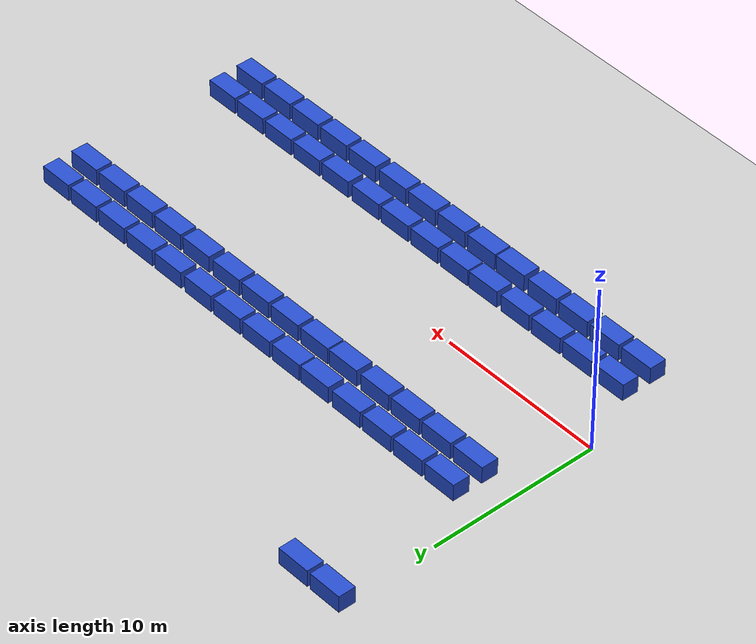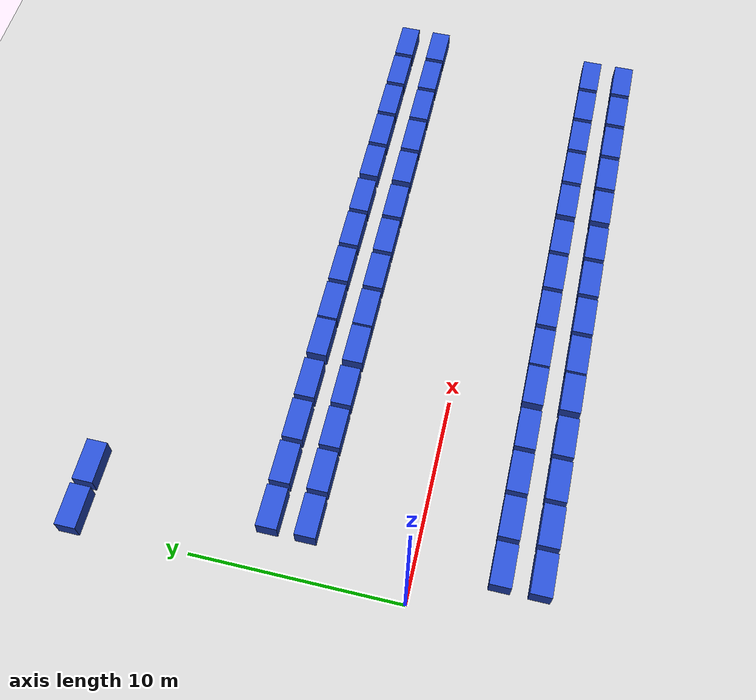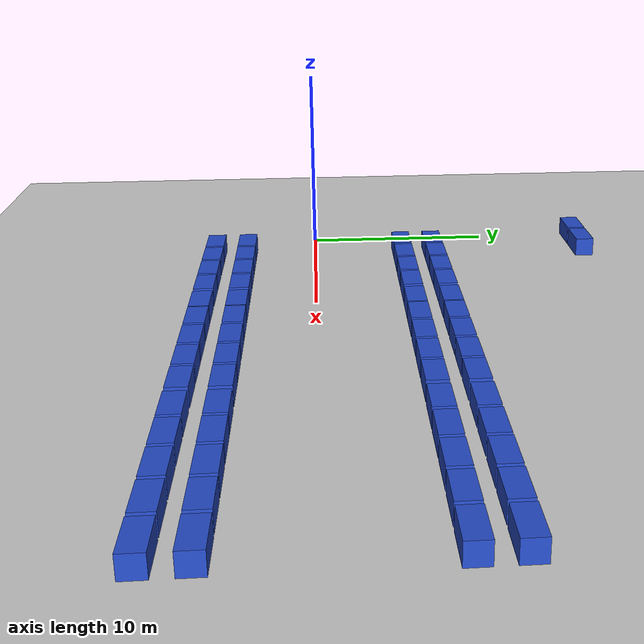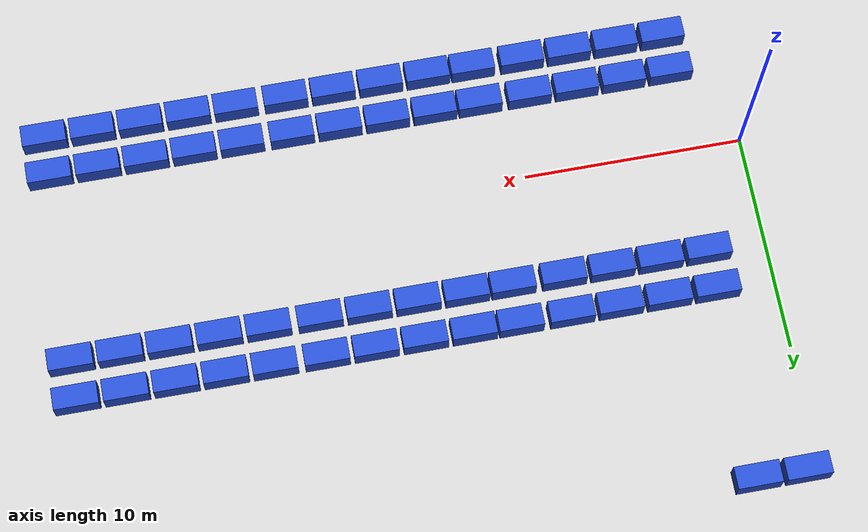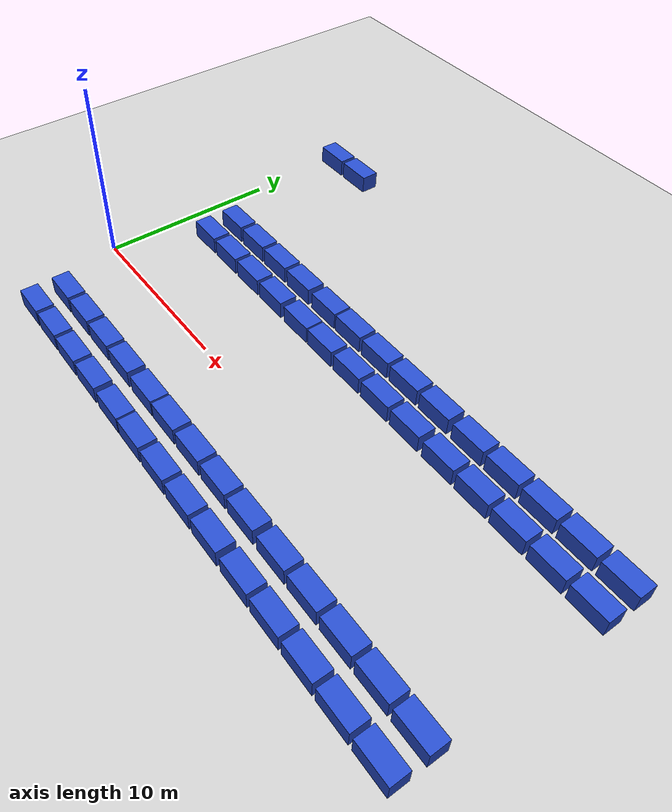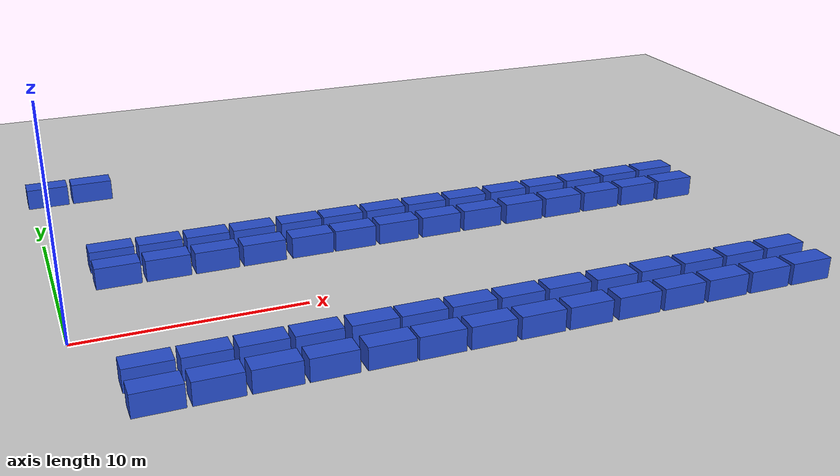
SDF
<sdf version="1.6">
 <world name="default">
  <model name="ground_plane">
   <static>1</static>
   <link name="link">
    <collision name="collision">
     <geometry><plane><normal>0 0 1</normal><size>100 100</size></plane></geometry>
     <surface><friction><ode><mu>100</mu><mu2>50</mu2></ode></friction></surface>
    </collision>
    <visual name="visual">
     <cast_shadows>0</cast_shadows>
     <geometry><plane><normal>0 0 1</normal><size>100 100</size></plane></geometry>
     <material>
      <script><uri>file://media/materials/scripts/gazebo.material</uri><name>Gazebo/Grey</name></script>
     </material>
    </visual>
   </link>
  </model>
  <model name="box101">
   <link name="blue_box">
    <inertial>
     <pose>2 0 0 0 -0 0</pose>
     <mass>1</mass>
     <inertia><ixx>0.17</ixx><ixy>0</ixy><ixz>0</ixz><iyy>0.42</iyy><iyz>0</iyz><izz>0.42</izz></inertia>
    </inertial>
    <collision name="blue_box_collision">
     <pose>2 0 1 0 -0 0</pose>
     <geometry><box><size>2 1 1</size></box></geometry>
    </collision>
    <visual name="blue_box_visual">
     <pose>2 0 1 0 -0 0</pose>
     <geometry><box><size>2 1 1</size></box></geometry>
     <material>
      <script><name>Gazebo/Blue</name><uri>file://media/materials/scripts/gazebo.material</uri></script>
     </material>
    </visual>
    <gravity>0</gravity>
   </link>
   <pose>-1.3 15.5996 -0.500378 -0.000755 0 0</pose>
  </model>
  <model name="box102">
   <link name="blue_box">
    <inertial>
     <pose>2 0 0 0 -0 0</pose>
     <mass>1</mass>
     <inertia><ixx>0.17</ixx><ixy>0</ixy><ixz>0</ixz><iyy>0.42</iyy><iyz>0</iyz><izz>0.42</izz></inertia>
    </inertial>
    <collision name="blue_box_collision">
     <pose>2 0 1 0 -0 0</pose>
     <geometry><box><size>2 1 1</size></box></geometry>
    </collision>
    <visual name="blue_box_visual">
     <pose>2 0 1 0 -0 0</pose>
     <geometry><box><size>2 1 1</size></box></geometry>
     <material>
      <script><name>Gazebo/Blue</name><uri>file://media/materials/scripts/gazebo.material</uri></script>
     </material>
    </visual>
    <gravity>0</gravity>
   </link>
   <pose>0.900004 15.5996 -0.500378 -0.000755 0 0</pose>
  </model>
  <model name="box131">
   <link name="blue_box">
    <inertial>
     <pose>2 0 0 0 -0 0</pose>
     <mass>1</mass>
     <inertia><ixx>0.17</ixx><ixy>0</ixy><ixz>0</ixz><iyy>0.42</iyy><iyz>0</iyz><izz>0.42</izz></inertia>
    </inertial>
    <collision name="blue_box_collision">
     <pose>2 0 1 0 -0 0</pose>
     <geometry><box><size>2 1 1</size></box></geometry>
    </collision>
    <visual name="blue_box_visual">
     <pose>2 0 1 0 -0 0</pose>
     <geometry><box><size>2 1 1</size></box></geometry>
     <material>
      <script><name>Gazebo/Blue</name><uri>file://media/materials/scripts/gazebo.material</uri></script>
     </material>
    </visual>
    <gravity>0</gravity>
   </link>
   <pose>0.700003 6.79962 -0.500378 -0.000755 0 0</pose>
  </model>
  <model name="box132">
   <link name="blue_box">
    <inertial>
     <pose>2 0 0 0 -0 0</pose>
     <mass>1</mass>
     <inertia><ixx>0.17</ixx><ixy>0</ixy><ixz>0</ixz><iyy>0.42</iyy><iyz>0</iyz><izz>0.42</izz></inertia>
    </inertial>
    <collision name="blue_box_collision">
     <pose>2 0 1 0 -0 0</pose>
     <geometry><box><size>2 1 1</size></box></geometry>
    </collision>
    <visual name="blue_box_visual">
     <pose>2 0 1 0 -0 0</pose>
     <geometry><box><size>2 1 1</size></box></geometry>
     <material>
      <script><name>Gazebo/Blue</name><uri>file://media/materials/scripts/gazebo.material</uri></script>
     </material>
    </visual>
    <gravity>0</gravity>
   </link>
   <pose>2.9 6.79962 -0.500378 -0.000755 0 0</pose>
  </model>
  <model name="box133">
   <link name="blue_box">
    <inertial>
     <pose>2 0 0 0 -0 0</pose>
     <mass>1</mass>
     <inertia><ixx>0.17</ixx><ixy>0</ixy><ixz>0</ixz><iyy>0.42</iyy><iyz>0</iyz><izz>0.42</izz></inertia>
    </inertial>
    <collision name="blue_box_collision">
     <pose>2 0 1 0 -0 0</pose>
     <geometry><box><size>2 1 1</size></box></geometry>
    </collision>
    <visual name="blue_box_visual">
     <pose>2 0 1 0 -0 0</pose>
     <geometry><box><size>2 1 1</size></box></geometry>
     <material>
      <script><name>Gazebo/Blue</name><uri>file://media/materials/scripts/gazebo.material</uri></script>
     </material>
    </visual>
    <gravity>0</gravity>
   </link>
   <pose>5.1 6.79962 -0.500378 -0.000755 0 0</pose>
  </model>
  <model name="box134">
   <link name="blue_box">
    <inertial>
     <pose>2 0 0 0 -0 0</pose>
     <mass>1</mass>
     <inertia><ixx>0.17</ixx><ixy>0</ixy><ixz>0</ixz><iyy>0.42</iyy><iyz>0</iyz><izz>0.42</izz></inertia>
    </inertial>
    <collision name="blue_box_collision">
     <pose>2 0 1 0 -0 0</pose>
     <geometry><box><size>2 1 1</size></box></geometry>
    </collision>
    <visual name="blue_box_visual">
     <pose>2 0 1 0 -0 0</pose>
     <geometry><box><size>2 1 1</size></box></geometry>
     <material>
      <script><name>Gazebo/Blue</name><uri>file://media/materials/scripts/gazebo.material</uri></script>
     </material>
    </visual>
    <gravity>0</gravity>
   </link>
   <pose>7.3 6.79962 -0.500378 -0.000755 0 0</pose>
  </model>
  <model name="box135">
   <link name="blue_box">
    <inertial>
     <pose>2 0 0 0 -0 0</pose>
     <mass>1</mass>
     <inertia><ixx>0.17</ixx><ixy>0</ixy><ixz>0</ixz><iyy>0.42</iyy><iyz>0</iyz><izz>0.42</izz></inertia>
    </inertial>
    <collision name="blue_box_collision">
     <pose>2 0 1 0 -0 0</pose>
     <geometry><box><size>2 1 1</size></box></geometry>
    </collision>
    <visual name="blue_box_visual">
     <pose>2 0 1 0 -0 0</pose>
     <geometry><box><size>2 1 1</size></box></geometry>
     <material>
      <script><name>Gazebo/Blue</name><uri>file://media/materials/scripts/gazebo.material</uri></script>
     </material>
    </visual>
    <gravity>0</gravity>
   </link>
   <pose>9.6 6.79962 -0.500378 -0.000755 0 0</pose>
  </model>
  <model name="box136">
   <link name="blue_box">
    <inertial>
     <pose>2 0 0 0 -0 0</pose>
     <mass>1</mass>
     <inertia><ixx>0.17</ixx><ixy>0</ixy><ixz>0</ixz><iyy>0.42</iyy><iyz>0</iyz><izz>0.42</izz></inertia>
    </inertial>
    <collision name="blue_box_collision">
     <pose>2 0 1 0 -0 0</pose>
     <geometry><box><size>2 1 1</size></box></geometry>
    </collision>
    <visual name="blue_box_visual">
     <pose>2 0 1 0 -0 0</pose>
     <geometry><box><size>2 1 1</size></box></geometry>
     <material>
      <script><name>Gazebo/Blue</name><uri>file://media/materials/scripts/gazebo.material</uri></script>
     </material>
    </visual>
    <gravity>0</gravity>
   </link>
   <pose>11.7 6.79962 -0.500378 -0.000755 0 0</pose>
  </model>
  <model name="box137">
   <link name="blue_box">
    <inertial>
     <pose>2 0 0 0 -0 0</pose>
     <mass>1</mass>
     <inertia><ixx>0.17</ixx><ixy>0</ixy><ixz>0</ixz><iyy>0.42</iyy><iyz>0</iyz><izz>0.42</izz></inertia>
    </inertial>
    <collision name="blue_box_collision">
     <pose>2 0 1 0 -0 0</pose>
     <geometry><box><size>2 1 1</size></box></geometry>
    </collision>
    <visual name="blue_box_visual">
     <pose>2 0 1 0 -0 0</pose>
     <geometry><box><size>2 1 1</size></box></geometry>
     <material>
      <script><name>Gazebo/Blue</name><uri>file://media/materials/scripts/gazebo.material</uri></script>
     </material>
    </visual>
    <gravity>0</gravity>
   </link>
   <pose>13.9 6.80038 -0.500378 0.000755 -0 0</pose>
  </model>
  <model name="box138">
   <link name="blue_box">
    <inertial>
     <pose>2 0 0 0 -0 0</pose>
     <mass>1</mass>
     <inertia><ixx>0.17</ixx><ixy>0</ixy><ixz>0</ixz><iyy>0.42</iyy><iyz>0</iyz><izz>0.42</izz></inertia>
    </inertial>
    <collision name="blue_box_collision">
     <pose>2 0 1 0 -0 0</pose>
     <geometry><box><size>2 1 1</size></box></geometry>
    </collision>
    <visual name="blue_box_visual">
     <pose>2 0 1 0 -0 0</pose>
     <geometry><box><size>2 1 1</size></box></geometry>
     <material>
      <script><name>Gazebo/Blue</name><uri>file://media/materials/scripts/gazebo.material</uri></script>
     </material>
    </visual>
    <gravity>0</gravity>
   </link>
   <pose>16.1 6.79962 -0.500378 -0.000755 0 0</pose>
  </model>
  <model name="box139">
   <link name="blue_box">
    <inertial>
     <pose>2 0 0 0 -0 0</pose>
     <mass>1</mass>
     <inertia><ixx>0.17</ixx><ixy>0</ixy><ixz>0</ixz><iyy>0.42</iyy><iyz>0</iyz><izz>0.42</izz></inertia>
    </inertial>
    <collision name="blue_box_collision">
     <pose>2 0 1 0 -0 0</pose>
     <geometry><box><size>2 1 1</size></box></geometry>
    </collision>
    <visual name="blue_box_visual">
     <pose>2 0 1 0 -0 0</pose>
     <geometry><box><size>2 1 1</size></box></geometry>
     <material>
      <script><name>Gazebo/Blue</name><uri>file://media/materials/scripts/gazebo.material</uri></script>
     </material>
    </visual>
    <gravity>0</gravity>
   </link>
   <pose>18.3 6.79962 -0.500378 -0.000755 0 0</pose>
  </model>
  <model name="box140">
   <link name="blue_box">
    <inertial>
     <pose>2 0 0 0 -0 0</pose>
     <mass>1</mass>
     <inertia><ixx>0.17</ixx><ixy>0</ixy><ixz>0</ixz><iyy>0.42</iyy><iyz>0</iyz><izz>0.42</izz></inertia>
    </inertial>
    <collision name="blue_box_collision">
     <pose>2 0 1 0 -0 0</pose>
     <geometry><box><size>2 1 1</size></box></geometry>
    </collision>
    <visual name="blue_box_visual">
     <pose>2 0 1 0 -0 0</pose>
     <geometry><box><size>2 1 1</size></box></geometry>
     <material>
      <script><name>Gazebo/Blue</name><uri>file://media/materials/scripts/gazebo.material</uri></script>
     </material>
    </visual>
    <gravity>0</gravity>
   </link>
   <pose>20.6 6.80038 -0.500378 0.000755 -0 0</pose>
  </model>
  <model name="box141">
   <link name="blue_box">
    <inertial>
     <pose>2 0 0 0 -0 0</pose>
     <mass>1</mass>
     <inertia><ixx>0.17</ixx><ixy>0</ixy><ixz>0</ixz><iyy>0.42</iyy><iyz>0</iyz><izz>0.42</izz></inertia>
    </inertial>
    <collision name="blue_box_collision">
     <pose>2 0 1 0 -0 0</pose>
     <geometry><box><size>2 1 1</size></box></geometry>
    </collision>
    <visual name="blue_box_visual">
     <pose>2 0 1 0 -0 0</pose>
     <geometry><box><size>2 1 1</size></box></geometry>
     <material>
      <script><name>Gazebo/Blue</name><uri>file://media/materials/scripts/gazebo.material</uri></script>
     </material>
    </visual>
    <gravity>0</gravity>
   </link>
   <pose>22.8 6.80038 -0.500378 0.000755 -0 0</pose>
  </model>
  <model name="box142">
   <link name="blue_box">
    <inertial>
     <pose>2 0 0 0 -0 0</pose>
     <mass>1</mass>
     <inertia><ixx>0.17</ixx><ixy>0</ixy><ixz>0</ixz><iyy>0.42</iyy><iyz>0</iyz><izz>0.42</izz></inertia>
    </inertial>
    <collision name="blue_box_collision">
     <pose>2 0 1 0 -0 0</pose>
     <geometry><box><size>2 1 1</size></box></geometry>
    </collision>
    <visual name="blue_box_visual">
     <pose>2 0 1 0 -0 0</pose>
     <geometry><box><size>2 1 1</size></box></geometry>
     <material>
      <script><name>Gazebo/Blue</name><uri>file://media/materials/scripts/gazebo.material</uri></script>
     </material>
    </visual>
    <gravity>0</gravity>
   </link>
   <pose>25 6.79962 -0.500378 -0.000755 0 0</pose>
  </model>
  <model name="box143">
   <link name="blue_box">
    <inertial>
     <pose>2 0 0 0 -0 0</pose>
     <mass>1</mass>
     <inertia><ixx>0.17</ixx><ixy>0</ixy><ixz>0</ixz><iyy>0.42</iyy><iyz>0</iyz><izz>0.42</izz></inertia>
    </inertial>
    <collision name="blue_box_collision">
     <pose>2 0 1 0 -0 0</pose>
     <geometry><box><size>2 1 1</size></box></geometry>
    </collision>
    <visual name="blue_box_visual">
     <pose>2 0 1 0 -0 0</pose>
     <geometry><box><size>2 1 1</size></box></geometry>
     <material>
      <script><name>Gazebo/Blue</name><uri>file://media/materials/scripts/gazebo.material</uri></script>
     </material>
    </visual>
    <gravity>0</gravity>
   </link>
   <pose>27.2 6.80038 -0.500378 0.000755 -0 0</pose>
  </model>
  <model name="box144">
   <link name="blue_box">
    <inertial>
     <pose>2 0 0 0 -0 0</pose>
     <mass>1</mass>
     <inertia><ixx>0.17</ixx><ixy>0</ixy><ixz>0</ixz><iyy>0.42</iyy><iyz>0</iyz><izz>0.42</izz></inertia>
    </inertial>
    <collision name="blue_box_collision">
     <pose>2 0 1 0 -0 0</pose>
     <geometry><box><size>2 1 1</size></box></geometry>
    </collision>
    <visual name="blue_box_visual">
     <pose>2 0 1 0 -0 0</pose>
     <geometry><box><size>2 1 1</size></box></geometry>
     <material>
      <script><name>Gazebo/Blue</name><uri>file://media/materials/scripts/gazebo.material</uri></script>
     </material>
    </visual>
    <gravity>0</gravity>
   </link>
   <pose>29.4 6.79962 -0.500378 -0.000755 0 0</pose>
  </model>
  <model name="box160">
   <link name="blue_box">
    <inertial>
     <pose>2 0 0 0 -0 0</pose>
     <mass>1</mass>
     <inertia><ixx>0.17</ixx><ixy>0</ixy><ixz>0</ixz><iyy>0.42</iyy><iyz>0</iyz><izz>0.42</izz></inertia>
    </inertial>
    <collision name="blue_box_collision">
     <pose>2 0 1 0 -0 0</pose>
     <geometry><box><size>2 1 1</size></box></geometry>
    </collision>
    <visual name="blue_box_visual">
     <pose>2 0 1 0 -0 0</pose>
     <geometry><box><size>2 1 1</size></box></geometry>
     <material>
      <script><name>Gazebo/Blue</name><uri>file://media/materials/scripts/gazebo.material</uri></script>
     </material>
    </visual>
    <gravity>0</gravity>
   </link>
   <pose>0.700002 5.00038 -0.500378 0.000755 -0 0</pose>
  </model>
  <model name="box161">
   <link name="blue_box">
    <inertial>
     <pose>2 0 0 0 -0 0</pose>
     <mass>1</mass>
     <inertia><ixx>0.17</ixx><ixy>0</ixy><ixz>0</ixz><iyy>0.42</iyy><iyz>0</iyz><izz>0.42</izz></inertia>
    </inertial>
    <collision name="blue_box_collision">
     <pose>2 0 1 0 -0 0</pose>
     <geometry><box><size>2 1 1</size></box></geometry>
    </collision>
    <visual name="blue_box_visual">
     <pose>2 0 1 0 -0 0</pose>
     <geometry><box><size>2 1 1</size></box></geometry>
     <material>
      <script><name>Gazebo/Blue</name><uri>file://media/materials/scripts/gazebo.material</uri></script>
     </material>
    </visual>
    <gravity>0</gravity>
   </link>
   <pose>2.9 5.00038 -0.500378 0.000755 -0 0</pose>
  </model>
  <model name="box162">
   <link name="blue_box">
    <inertial>
     <pose>2 0 0 0 -0 0</pose>
     <mass>1</mass>
     <inertia><ixx>0.17</ixx><ixy>0</ixy><ixz>0</ixz><iyy>0.42</iyy><iyz>0</iyz><izz>0.42</izz></inertia>
    </inertial>
    <collision name="blue_box_collision">
     <pose>2 0 1 0 -0 0</pose>
     <geometry><box><size>2 1 1</size></box></geometry>
    </collision>
    <visual name="blue_box_visual">
     <pose>2 0 1 0 -0 0</pose>
     <geometry><box><size>2 1 1</size></box></geometry>
     <material>
      <script><name>Gazebo/Blue</name><uri>file://media/materials/scripts/gazebo.material</uri></script>
     </material>
    </visual>
    <gravity>0</gravity>
   </link>
   <pose>5.1 4.99962 -0.500378 -0.000755 0 0</pose>
  </model>
  <model name="box163">
   <link name="blue_box">
    <inertial>
     <pose>2 0 0 0 -0 0</pose>
     <mass>1</mass>
     <inertia><ixx>0.17</ixx><ixy>0</ixy><ixz>0</ixz><iyy>0.42</iyy><iyz>0</iyz><izz>0.42</izz></inertia>
    </inertial>
    <collision name="blue_box_collision">
     <pose>2 0 1 0 -0 0</pose>
     <geometry><box><size>2 1 1</size></box></geometry>
    </collision>
    <visual name="blue_box_visual">
     <pose>2 0 1 0 -0 0</pose>
     <geometry><box><size>2 1 1</size></box></geometry>
     <material>
      <script><name>Gazebo/Blue</name><uri>file://media/materials/scripts/gazebo.material</uri></script>
     </material>
    </visual>
    <gravity>0</gravity>
   </link>
   <pose>7.3 5.00038 -0.500378 0.000755 -0 0</pose>
  </model>
  <model name="box164">
   <link name="blue_box">
    <inertial>
     <pose>2 0 0 0 -0 0</pose>
     <mass>1</mass>
     <inertia><ixx>0.17</ixx><ixy>0</ixy><ixz>0</ixz><iyy>0.42</iyy><iyz>0</iyz><izz>0.42</izz></inertia>
    </inertial>
    <collision name="blue_box_collision">
     <pose>2 0 1 0 -0 0</pose>
     <geometry><box><size>2 1 1</size></box></geometry>
    </collision>
    <visual name="blue_box_visual">
     <pose>2 0 1 0 -0 0</pose>
     <geometry><box><size>2 1 1</size></box></geometry>
     <material>
      <script><name>Gazebo/Blue</name><uri>file://media/materials/scripts/gazebo.material</uri></script>
     </material>
    </visual>
    <gravity>0</gravity>
   </link>
   <pose>9.6 5.00038 -0.500378 0.000755 -0 0</pose>
  </model>
  <model name="box165">
   <link name="blue_box">
    <inertial>
     <pose>2 0 0 0 -0 0</pose>
     <mass>1</mass>
     <inertia><ixx>0.17</ixx><ixy>0</ixy><ixz>0</ixz><iyy>0.42</iyy><iyz>0</iyz><izz>0.42</izz></inertia>
    </inertial>
    <collision name="blue_box_collision">
     <pose>2 0 1 0 -0 0</pose>
     <geometry><box><size>2 1 1</size></box></geometry>
    </collision>
    <visual name="blue_box_visual">
     <pose>2 0 1 0 -0 0</pose>
     <geometry><box><size>2 1 1</size></box></geometry>
     <material>
      <script><name>Gazebo/Blue</name><uri>file://media/materials/scripts/gazebo.material</uri></script>
     </material>
    </visual>
    <gravity>0</gravity>
   </link>
   <pose>11.7 5.00038 -0.500378 0.000755 -0 0</pose>
  </model>
  <model name="box166">
   <link name="blue_box">
    <inertial>
     <pose>2 0 0 0 -0 0</pose>
     <mass>1</mass>
     <inertia><ixx>0.17</ixx><ixy>0</ixy><ixz>0</ixz><iyy>0.42</iyy><iyz>0</iyz><izz>0.42</izz></inertia>
    </inertial>
    <collision name="blue_box_collision">
     <pose>2 0 1 0 -0 0</pose>
     <geometry><box><size>2 1 1</size></box></geometry>
    </collision>
    <visual name="blue_box_visual">
     <pose>2 0 1 0 -0 0</pose>
     <geometry><box><size>2 1 1</size></box></geometry>
     <material>
      <script><name>Gazebo/Blue</name><uri>file://media/materials/scripts/gazebo.material</uri></script>
     </material>
    </visual>
    <gravity>0</gravity>
   </link>
   <pose>13.9 4.99962 -0.500378 -0.000755 0 0</pose>
  </model>
  <model name="box167">
   <link name="blue_box">
    <inertial>
     <pose>2 0 0 0 -0 0</pose>
     <mass>1</mass>
     <inertia><ixx>0.17</ixx><ixy>0</ixy><ixz>0</ixz><iyy>0.42</iyy><iyz>0</iyz><izz>0.42</izz></inertia>
    </inertial>
    <collision name="blue_box_collision">
     <pose>2 0 1 0 -0 0</pose>
     <geometry><box><size>2 1 1</size></box></geometry>
    </collision>
    <visual name="blue_box_visual">
     <pose>2 0 1 0 -0 0</pose>
     <geometry><box><size>2 1 1</size></box></geometry>
     <material>
      <script><name>Gazebo/Blue</name><uri>file://media/materials/scripts/gazebo.material</uri></script>
     </material>
    </visual>
    <gravity>0</gravity>
   </link>
   <pose>16.1 5.00038 -0.500378 0.000755 -0 0</pose>
  </model>
  <model name="box168">
   <link name="blue_box">
    <inertial>
     <pose>2 0 0 0 -0 0</pose>
     <mass>1</mass>
     <inertia><ixx>0.17</ixx><ixy>0</ixy><ixz>0</ixz><iyy>0.42</iyy><iyz>0</iyz><izz>0.42</izz></inertia>
    </inertial>
    <collision name="blue_box_collision">
     <pose>2 0 1 0 -0 0</pose>
     <geometry><box><size>2 1 1</size></box></geometry>
    </collision>
    <visual name="blue_box_visual">
     <pose>2 0 1 0 -0 0</pose>
     <geometry><box><size>2 1 1</size></box></geometry>
     <material>
      <script><name>Gazebo/Blue</name><uri>file://media/materials/scripts/gazebo.material</uri></script>
     </material>
    </visual>
    <gravity>0</gravity>
   </link>
   <pose>18.3 4.99962 -0.500378 -0.000755 0 0</pose>
  </model>
  <model name="box169">
   <link name="blue_box">
    <inertial>
     <pose>2 0 0 0 -0 0</pose>
     <mass>1</mass>
     <inertia><ixx>0.17</ixx><ixy>0</ixy><ixz>0</ixz><iyy>0.42</iyy><iyz>0</iyz><izz>0.42</izz></inertia>
    </inertial>
    <collision name="blue_box_collision">
     <pose>2 0 1 0 -0 0</pose>
     <geometry><box><size>2 1 1</size></box></geometry>
    </collision>
    <visual name="blue_box_visual">
     <pose>2 0 1 0 -0 0</pose>
     <geometry><box><size>2 1 1</size></box></geometry>
     <material>
      <script><name>Gazebo/Blue</name><uri>file://media/materials/scripts/gazebo.material</uri></script>
     </material>
    </visual>
    <gravity>0</gravity>
   </link>
   <pose>20.6 5.00038 -0.500378 0.000755 -0 0</pose>
  </model>
  <model name="box170">
   <link name="blue_box">
    <inertial>
     <pose>2 0 0 0 -0 0</pose>
     <mass>1</mass>
     <inertia><ixx>0.17</ixx><ixy>0</ixy><ixz>0</ixz><iyy>0.42</iyy><iyz>0</iyz><izz>0.42</izz></inertia>
    </inertial>
    <collision name="blue_box_collision">
     <pose>2 0 1 0 -0 0</pose>
     <geometry><box><size>2 1 1</size></box></geometry>
    </collision>
    <visual name="blue_box_visual">
     <pose>2 0 1 0 -0 0</pose>
     <geometry><box><size>2 1 1</size></box></geometry>
     <material>
      <script><name>Gazebo/Blue</name><uri>file://media/materials/scripts/gazebo.material</uri></script>
     </material>
    </visual>
    <gravity>0</gravity>
   </link>
   <pose>22.8 4.99962 -0.500378 -0.000755 0 0</pose>
  </model>
  <model name="box171">
   <link name="blue_box">
    <inertial>
     <pose>2 0 0 0 -0 0</pose>
     <mass>1</mass>
     <inertia><ixx>0.17</ixx><ixy>0</ixy><ixz>0</ixz><iyy>0.42</iyy><iyz>0</iyz><izz>0.42</izz></inertia>
    </inertial>
    <collision name="blue_box_collision">
     <pose>2 0 1 0 -0 0</pose>
     <geometry><box><size>2 1 1</size></box></geometry>
    </collision>
    <visual name="blue_box_visual">
     <pose>2 0 1 0 -0 0</pose>
     <geometry><box><size>2 1 1</size></box></geometry>
     <material>
      <script><name>Gazebo/Blue</name><uri>file://media/materials/scripts/gazebo.material</uri></script>
     </material>
    </visual>
    <gravity>0</gravity>
   </link>
   <pose>25 5.00038 -0.500378 0.000755 -0 0</pose>
  </model>
  <model name="box172">
   <link name="blue_box">
    <inertial>
     <pose>2 0 0 0 -0 0</pose>
     <mass>1</mass>
     <inertia><ixx>0.17</ixx><ixy>0</ixy><ixz>0</ixz><iyy>0.42</iyy><iyz>0</iyz><izz>0.42</izz></inertia>
    </inertial>
    <collision name="blue_box_collision">
     <pose>2 0 1 0 -0 0</pose>
     <geometry><box><size>2 1 1</size></box></geometry>
    </collision>
    <visual name="blue_box_visual">
     <pose>2 0 1 0 -0 0</pose>
     <geometry><box><size>2 1 1</size></box></geometry>
     <material>
      <script><name>Gazebo/Blue</name><uri>file://media/materials/scripts/gazebo.material</uri></script>
     </material>
    </visual>
    <gravity>0</gravity>
   </link>
   <pose>27.2 4.99962 -0.500378 -0.000755 0 0</pose>
  </model>
  <model name="box173">
   <link name="blue_box">
    <inertial>
     <pose>2 0 0 0 -0 0</pose>
     <mass>1</mass>
     <inertia><ixx>0.17</ixx><ixy>0</ixy><ixz>0</ixz><iyy>0.42</iyy><iyz>0</iyz><izz>0.42</izz></inertia>
    </inertial>
    <collision name="blue_box_collision">
     <pose>2 0 1 0 -0 0</pose>
     <geometry><box><size>2 1 1</size></box></geometry>
    </collision>
    <visual name="blue_box_visual">
     <pose>2 0 1 0 -0 0</pose>
     <geometry><box><size>2 1 1</size></box></geometry>
     <material>
      <script><name>Gazebo/Blue</name><uri>file://media/materials/scripts/gazebo.material</uri></script>
     </material>
    </visual>
    <gravity>0</gravity>
   </link>
   <pose>29.4 5.00038 -0.500378 0.000755 -0 0</pose>
  </model>
  <model name="box189">
   <link name="blue_box">
    <inertial>
     <pose>2 0 0 0 -0 0</pose>
     <mass>1</mass>
     <inertia><ixx>0.17</ixx><ixy>0</ixy><ixz>0</ixz><iyy>0.42</iyy><iyz>0</iyz><izz>0.42</izz></inertia>
    </inertial>
    <collision name="blue_box_collision">
     <pose>2 0 1 0 -0 0</pose>
     <geometry><box><size>2 1 1</size></box></geometry>
    </collision>
    <visual name="blue_box_visual">
     <pose>2 0 1 0 -0 0</pose>
     <geometry><box><size>2 1 1</size></box></geometry>
     <material>
      <script><name>Gazebo/Blue</name><uri>file://media/materials/scripts/gazebo.material</uri></script>
     </material>
    </visual>
    <gravity>0</gravity>
   </link>
   <pose>0.500001 -3.89962 -0.500378 0.000755 -0 0</pose>
  </model>
  <model name="box190">
   <link name="blue_box">
    <inertial>
     <pose>2 0 0 0 -0 0</pose>
     <mass>1</mass>
     <inertia><ixx>0.17</ixx><ixy>0</ixy><ixz>0</ixz><iyy>0.42</iyy><iyz>0</iyz><izz>0.42</izz></inertia>
    </inertial>
    <collision name="blue_box_collision">
     <pose>2 0 1 0 -0 0</pose>
     <geometry><box><size>2 1 1</size></box></geometry>
    </collision>
    <visual name="blue_box_visual">
     <pose>2 0 1 0 -0 0</pose>
     <geometry><box><size>2 1 1</size></box></geometry>
     <material>
      <script><name>Gazebo/Blue</name><uri>file://media/materials/scripts/gazebo.material</uri></script>
     </material>
    </visual>
    <gravity>0</gravity>
   </link>
   <pose>2.7 -3.90038 -0.500378 -0.000755 0 0</pose>
  </model>
  <model name="box191">
   <link name="blue_box">
    <inertial>
     <pose>2 0 0 0 -0 0</pose>
     <mass>1</mass>
     <inertia><ixx>0.17</ixx><ixy>0</ixy><ixz>0</ixz><iyy>0.42</iyy><iyz>0</iyz><izz>0.42</izz></inertia>
    </inertial>
    <collision name="blue_box_collision">
     <pose>2 0 1 0 -0 0</pose>
     <geometry><box><size>2 1 1</size></box></geometry>
    </collision>
    <visual name="blue_box_visual">
     <pose>2 0 1 0 -0 0</pose>
     <geometry><box><size>2 1 1</size></box></geometry>
     <material>
      <script><name>Gazebo/Blue</name><uri>file://media/materials/scripts/gazebo.material</uri></script>
     </material>
    </visual>
    <gravity>0</gravity>
   </link>
   <pose>4.9 -3.90038 -0.500378 -0.000755 0 0</pose>
  </model>
  <model name="box192">
   <link name="blue_box">
    <inertial>
     <pose>2 0 0 0 -0 0</pose>
     <mass>1</mass>
     <inertia><ixx>0.17</ixx><ixy>0</ixy><ixz>0</ixz><iyy>0.42</iyy><iyz>0</iyz><izz>0.42</izz></inertia>
    </inertial>
    <collision name="blue_box_collision">
     <pose>2 0 1 0 -0 0</pose>
     <geometry><box><size>2 1 1</size></box></geometry>
    </collision>
    <visual name="blue_box_visual">
     <pose>2 0 1 0 -0 0</pose>
     <geometry><box><size>2 1 1</size></box></geometry>
     <material>
      <script><name>Gazebo/Blue</name><uri>file://media/materials/scripts/gazebo.material</uri></script>
     </material>
    </visual>
    <gravity>0</gravity>
   </link>
   <pose>7.1 -3.89962 -0.500378 0.000755 -0 0</pose>
  </model>
  <model name="box193">
   <link name="blue_box">
    <inertial>
     <pose>2 0 0 0 -0 0</pose>
     <mass>1</mass>
     <inertia><ixx>0.17</ixx><ixy>0</ixy><ixz>0</ixz><iyy>0.42</iyy><iyz>0</iyz><izz>0.42</izz></inertia>
    </inertial>
    <collision name="blue_box_collision">
     <pose>2 0 1 0 -0 0</pose>
     <geometry><box><size>2 1 1</size></box></geometry>
    </collision>
    <visual name="blue_box_visual">
     <pose>2 0 1 0 -0 0</pose>
     <geometry><box><size>2 1 1</size></box></geometry>
     <material>
      <script><name>Gazebo/Blue</name><uri>file://media/materials/scripts/gazebo.material</uri></script>
     </material>
    </visual>
    <gravity>0</gravity>
   </link>
   <pose>9.4 -3.89962 -0.500378 0.000755 -0 0</pose>
  </model>
  <model name="box194">
   <link name="blue_box">
    <inertial>
     <pose>2 0 0 0 -0 0</pose>
     <mass>1</mass>
     <inertia><ixx>0.17</ixx><ixy>0</ixy><ixz>0</ixz><iyy>0.42</iyy><iyz>0</iyz><izz>0.42</izz></inertia>
    </inertial>
    <collision name="blue_box_collision">
     <pose>2 0 1 0 -0 0</pose>
     <geometry><box><size>2 1 1</size></box></geometry>
    </collision>
    <visual name="blue_box_visual">
     <pose>2 0 1 0 -0 0</pose>
     <geometry><box><size>2 1 1</size></box></geometry>
     <material>
      <script><name>Gazebo/Blue</name><uri>file://media/materials/scripts/gazebo.material</uri></script>
     </material>
    </visual>
    <gravity>0</gravity>
   </link>
   <pose>11.5 -3.89962 -0.500378 0.000755 -0 0</pose>
  </model>
  <model name="box195">
   <link name="blue_box">
    <inertial>
     <pose>2 0 0 0 -0 0</pose>
     <mass>1</mass>
     <inertia><ixx>0.17</ixx><ixy>0</ixy><ixz>0</ixz><iyy>0.42</iyy><iyz>0</iyz><izz>0.42</izz></inertia>
    </inertial>
    <collision name="blue_box_collision">
     <pose>2 0 1 0 -0 0</pose>
     <geometry><box><size>2 1 1</size></box></geometry>
    </collision>
    <visual name="blue_box_visual">
     <pose>2 0 1 0 -0 0</pose>
     <geometry><box><size>2 1 1</size></box></geometry>
     <material>
      <script><name>Gazebo/Blue</name><uri>file://media/materials/scripts/gazebo.material</uri></script>
     </material>
    </visual>
    <gravity>0</gravity>
   </link>
   <pose>13.7 -3.89962 -0.500378 0.000755 -0 0</pose>
  </model>
  <model name="box196">
   <link name="blue_box">
    <inertial>
     <pose>2 0 0 0 -0 0</pose>
     <mass>1</mass>
     <inertia><ixx>0.17</ixx><ixy>0</ixy><ixz>0</ixz><iyy>0.42</iyy><iyz>0</iyz><izz>0.42</izz></inertia>
    </inertial>
    <collision name="blue_box_collision">
     <pose>2 0 1 0 -0 0</pose>
     <geometry><box><size>2 1 1</size></box></geometry>
    </collision>
    <visual name="blue_box_visual">
     <pose>2 0 1 0 -0 0</pose>
     <geometry><box><size>2 1 1</size></box></geometry>
     <material>
      <script><name>Gazebo/Blue</name><uri>file://media/materials/scripts/gazebo.material</uri></script>
     </material>
    </visual>
    <gravity>0</gravity>
   </link>
   <pose>15.9 -3.90038 -0.500378 -0.000755 0 0</pose>
  </model>
  <model name="box197">
   <link name="blue_box">
    <inertial>
     <pose>2 0 0 0 -0 0</pose>
     <mass>1</mass>
     <inertia><ixx>0.17</ixx><ixy>0</ixy><ixz>0</ixz><iyy>0.42</iyy><iyz>0</iyz><izz>0.42</izz></inertia>
    </inertial>
    <collision name="blue_box_collision">
     <pose>2 0 1 0 -0 0</pose>
     <geometry><box><size>2 1 1</size></box></geometry>
    </collision>
    <visual name="blue_box_visual">
     <pose>2 0 1 0 -0 0</pose>
     <geometry><box><size>2 1 1</size></box></geometry>
     <material>
      <script><name>Gazebo/Blue</name><uri>file://media/materials/scripts/gazebo.material</uri></script>
     </material>
    </visual>
    <gravity>0</gravity>
   </link>
   <pose>18.1 -3.90038 -0.500378 -0.000755 0 0</pose>
  </model>
  <model name="box198">
   <link name="blue_box">
    <inertial>
     <pose>2 0 0 0 -0 0</pose>
     <mass>1</mass>
     <inertia><ixx>0.17</ixx><ixy>0</ixy><ixz>0</ixz><iyy>0.42</iyy><iyz>0</iyz><izz>0.42</izz></inertia>
    </inertial>
    <collision name="blue_box_collision">
     <pose>2 0 1 0 -0 0</pose>
     <geometry><box><size>2 1 1</size></box></geometry>
    </collision>
    <visual name="blue_box_visual">
     <pose>2 0 1 0 -0 0</pose>
     <geometry><box><size>2 1 1</size></box></geometry>
     <material>
      <script><name>Gazebo/Blue</name><uri>file://media/materials/scripts/gazebo.material</uri></script>
     </material>
    </visual>
    <gravity>0</gravity>
   </link>
   <pose>20.4 -3.90038 -0.500378 -0.000755 0 0</pose>
  </model>
  <model name="box199">
   <link name="blue_box">
    <inertial>
     <pose>2 0 0 0 -0 0</pose>
     <mass>1</mass>
     <inertia><ixx>0.17</ixx><ixy>0</ixy><ixz>0</ixz><iyy>0.42</iyy><iyz>0</iyz><izz>0.42</izz></inertia>
    </inertial>
    <collision name="blue_box_collision">
     <pose>2 0 1 0 -0 0</pose>
     <geometry><box><size>2 1 1</size></box></geometry>
    </collision>
    <visual name="blue_box_visual">
     <pose>2 0 1 0 -0 0</pose>
     <geometry><box><size>2 1 1</size></box></geometry>
     <material>
      <script><name>Gazebo/Blue</name><uri>file://media/materials/scripts/gazebo.material</uri></script>
     </material>
    </visual>
    <gravity>0</gravity>
   </link>
   <pose>22.6 -3.90038 -0.500378 -0.000755 0 0</pose>
  </model>
  <model name="box200">
   <link name="blue_box">
    <inertial>
     <pose>2 0 0 0 -0 0</pose>
     <mass>1</mass>
     <inertia><ixx>0.17</ixx><ixy>0</ixy><ixz>0</ixz><iyy>0.42</iyy><iyz>0</iyz><izz>0.42</izz></inertia>
    </inertial>
    <collision name="blue_box_collision">
     <pose>2 0 1 0 -0 0</pose>
     <geometry><box><size>2 1 1</size></box></geometry>
    </collision>
    <visual name="blue_box_visual">
     <pose>2 0 1 0 -0 0</pose>
     <geometry><box><size>2 1 1</size></box></geometry>
     <material>
      <script><name>Gazebo/Blue</name><uri>file://media/materials/scripts/gazebo.material</uri></script>
     </material>
    </visual>
    <gravity>0</gravity>
   </link>
   <pose>24.8 -3.90038 -0.500378 -0.000755 0 0</pose>
  </model>
  <model name="box201">
   <link name="blue_box">
    <inertial>
     <pose>2 0 0 0 -0 0</pose>
     <mass>1</mass>
     <inertia><ixx>0.17</ixx><ixy>0</ixy><ixz>0</ixz><iyy>0.42</iyy><iyz>0</iyz><izz>0.42</izz></inertia>
    </inertial>
    <collision name="blue_box_collision">
     <pose>2 0 1 0 -0 0</pose>
     <geometry><box><size>2 1 1</size></box></geometry>
    </collision>
    <visual name="blue_box_visual">
     <pose>2 0 1 0 -0 0</pose>
     <geometry><box><size>2 1 1</size></box></geometry>
     <material>
      <script><name>Gazebo/Blue</name><uri>file://media/materials/scripts/gazebo.material</uri></script>
     </material>
    </visual>
    <gravity>0</gravity>
   </link>
   <pose>27 -3.90038 -0.500378 -0.000755 0 0</pose>
  </model>
  <model name="box202">
   <link name="blue_box">
    <inertial>
     <pose>2 0 0 0 -0 0</pose>
     <mass>1</mass>
     <inertia><ixx>0.17</ixx><ixy>0</ixy><ixz>0</ixz><iyy>0.42</iyy><iyz>0</iyz><izz>0.42</izz></inertia>
    </inertial>
    <collision name="blue_box_collision">
     <pose>2 0 1 0 -0 0</pose>
     <geometry><box><size>2 1 1</size></box></geometry>
    </collision>
    <visual name="blue_box_visual">
     <pose>2 0 1 0 -0 0</pose>
     <geometry><box><size>2 1 1</size></box></geometry>
     <material>
      <script><name>Gazebo/Blue</name><uri>file://media/materials/scripts/gazebo.material</uri></script>
     </material>
    </visual>
    <gravity>0</gravity>
   </link>
   <pose>29.2 -3.89962 -0.500378 0.000755 -0 0</pose>
  </model>
  <model name="box218">
   <link name="blue_box">
    <inertial>
     <pose>2 0 0 0 -0 0</pose>
     <mass>1</mass>
     <inertia><ixx>0.17</ixx><ixy>0</ixy><ixz>0</ixz><iyy>0.42</iyy><iyz>0</iyz><izz>0.42</izz></inertia>
    </inertial>
    <collision name="blue_box_collision">
     <pose>2 0 1 0 -0 0</pose>
     <geometry><box><size>2 1 1</size></box></geometry>
    </collision>
    <visual name="blue_box_visual">
     <pose>2 0 1 0 -0 0</pose>
     <geometry><box><size>2 1 1</size></box></geometry>
     <material>
      <script><name>Gazebo/Blue</name><uri>file://media/materials/scripts/gazebo.material</uri></script>
     </material>
    </visual>
    <gravity>0</gravity>
   </link>
   <pose>0.5 -5.69962 -0.500378 0.000755 -0 0</pose>
  </model>
  <model name="box219">
   <link name="blue_box">
    <inertial>
     <pose>2 0 0 0 -0 0</pose>
     <mass>1</mass>
     <inertia><ixx>0.17</ixx><ixy>0</ixy><ixz>0</ixz><iyy>0.42</iyy><iyz>0</iyz><izz>0.42</izz></inertia>
    </inertial>
    <collision name="blue_box_collision">
     <pose>2 0 1 0 -0 0</pose>
     <geometry><box><size>2 1 1</size></box></geometry>
    </collision>
    <visual name="blue_box_visual">
     <pose>2 0 1 0 -0 0</pose>
     <geometry><box><size>2 1 1</size></box></geometry>
     <material>
      <script><name>Gazebo/Blue</name><uri>file://media/materials/scripts/gazebo.material</uri></script>
     </material>
    </visual>
    <gravity>0</gravity>
   </link>
   <pose>2.7 -5.69962 -0.500378 0.000755 -0 0</pose>
  </model>
  <model name="box220">
   <link name="blue_box">
    <inertial>
     <pose>2 0 0 0 -0 0</pose>
     <mass>1</mass>
     <inertia><ixx>0.17</ixx><ixy>0</ixy><ixz>0</ixz><iyy>0.42</iyy><iyz>0</iyz><izz>0.42</izz></inertia>
    </inertial>
    <collision name="blue_box_collision">
     <pose>2 0 1 0 -0 0</pose>
     <geometry><box><size>2 1 1</size></box></geometry>
    </collision>
    <visual name="blue_box_visual">
     <pose>2 0 1 0 -0 0</pose>
     <geometry><box><size>2 1 1</size></box></geometry>
     <material>
      <script><name>Gazebo/Blue</name><uri>file://media/materials/scripts/gazebo.material</uri></script>
     </material>
    </visual>
    <gravity>0</gravity>
   </link>
   <pose>4.9 -5.69962 -0.500378 0.000755 -0 0</pose>
  </model>
  <model name="box221">
   <link name="blue_box">
    <inertial>
     <pose>2 0 0 0 -0 0</pose>
     <mass>1</mass>
     <inertia><ixx>0.17</ixx><ixy>0</ixy><ixz>0</ixz><iyy>0.42</iyy><iyz>0</iyz><izz>0.42</izz></inertia>
    </inertial>
    <collision name="blue_box_collision">
     <pose>2 0 1 0 -0 0</pose>
     <geometry><box><size>2 1 1</size></box></geometry>
    </collision>
    <visual name="blue_box_visual">
     <pose>2 0 1 0 -0 0</pose>
     <geometry><box><size>2 1 1</size></box></geometry>
     <material>
      <script><name>Gazebo/Blue</name><uri>file://media/materials/scripts/gazebo.material</uri></script>
     </material>
    </visual>
    <gravity>0</gravity>
   </link>
   <pose>7.1 -5.70038 -0.500378 -0.000755 0 0</pose>
  </model>
  <model name="box222">
   <link name="blue_box">
    <inertial>
     <pose>2 0 0 0 -0 0</pose>
     <mass>1</mass>
     <inertia><ixx>0.17</ixx><ixy>0</ixy><ixz>0</ixz><iyy>0.42</iyy><iyz>0</iyz><izz>0.42</izz></inertia>
    </inertial>
    <collision name="blue_box_collision">
     <pose>2 0 1 0 -0 0</pose>
     <geometry><box><size>2 1 1</size></box></geometry>
    </collision>
    <visual name="blue_box_visual">
     <pose>2 0 1 0 -0 0</pose>
     <geometry><box><size>2 1 1</size></box></geometry>
     <material>
      <script><name>Gazebo/Blue</name><uri>file://media/materials/scripts/gazebo.material</uri></script>
     </material>
    </visual>
    <gravity>0</gravity>
   </link>
   <pose>9.4 -5.69962 -0.500378 0.000755 -0 0</pose>
  </model>
  <model name="box223">
   <link name="blue_box">
    <inertial>
     <pose>2 0 0 0 -0 0</pose>
     <mass>1</mass>
     <inertia><ixx>0.17</ixx><ixy>0</ixy><ixz>0</ixz><iyy>0.42</iyy><iyz>0</iyz><izz>0.42</izz></inertia>
    </inertial>
    <collision name="blue_box_collision">
     <pose>2 0 1 0 -0 0</pose>
     <geometry><box><size>2 1 1</size></box></geometry>
    </collision>
    <visual name="blue_box_visual">
     <pose>2 0 1 0 -0 0</pose>
     <geometry><box><size>2 1 1</size></box></geometry>
     <material>
      <script><name>Gazebo/Blue</name><uri>file://media/materials/scripts/gazebo.material</uri></script>
     </material>
    </visual>
    <gravity>0</gravity>
   </link>
   <pose>11.5 -5.70038 -0.500378 -0.000755 0 0</pose>
  </model>
  <model name="box224">
   <link name="blue_box">
    <inertial>
     <pose>2 0 0 0 -0 0</pose>
     <mass>1</mass>
     <inertia><ixx>0.17</ixx><ixy>0</ixy><ixz>0</ixz><iyy>0.42</iyy><iyz>0</iyz><izz>0.42</izz></inertia>
    </inertial>
    <collision name="blue_box_collision">
     <pose>2 0 1 0 -0 0</pose>
     <geometry><box><size>2 1 1</size></box></geometry>
    </collision>
    <visual name="blue_box_visual">
     <pose>2 0 1 0 -0 0</pose>
     <geometry><box><size>2 1 1</size></box></geometry>
     <material>
      <script><name>Gazebo/Blue</name><uri>file://media/materials/scripts/gazebo.material</uri></script>
     </material>
    </visual>
    <gravity>0</gravity>
   </link>
   <pose>13.7 -5.69962 -0.500378 0.000755 -0 0</pose>
  </model>
  <model name="box225">
   <link name="blue_box">
    <inertial>
     <pose>2 0 0 0 -0 0</pose>
     <mass>1</mass>
     <inertia><ixx>0.17</ixx><ixy>0</ixy><ixz>0</ixz><iyy>0.42</iyy><iyz>0</iyz><izz>0.42</izz></inertia>
    </inertial>
    <collision name="blue_box_collision">
     <pose>2 0 1 0 -0 0</pose>
     <geometry><box><size>2 1 1</size></box></geometry>
    </collision>
    <visual name="blue_box_visual">
     <pose>2 0 1 0 -0 0</pose>
     <geometry><box><size>2 1 1</size></box></geometry>
     <material>
      <script><name>Gazebo/Blue</name><uri>file://media/materials/scripts/gazebo.material</uri></script>
     </material>
    </visual>
    <gravity>0</gravity>
   </link>
   <pose>15.9 -5.70038 -0.500378 -0.000755 0 0</pose>
  </model>
  <model name="box226">
   <link name="blue_box">
    <inertial>
     <pose>2 0 0 0 -0 0</pose>
     <mass>1</mass>
     <inertia><ixx>0.17</ixx><ixy>0</ixy><ixz>0</ixz><iyy>0.42</iyy><iyz>0</iyz><izz>0.42</izz></inertia>
    </inertial>
    <collision name="blue_box_collision">
     <pose>2 0 1 0 -0 0</pose>
     <geometry><box><size>2 1 1</size></box></geometry>
    </collision>
    <visual name="blue_box_visual">
     <pose>2 0 1 0 -0 0</pose>
     <geometry><box><size>2 1 1</size></box></geometry>
     <material>
      <script><name>Gazebo/Blue</name><uri>file://media/materials/scripts/gazebo.material</uri></script>
     </material>
    </visual>
    <gravity>0</gravity>
   </link>
   <pose>18.1 -5.69962 -0.500378 0.000755 -0 0</pose>
  </model>
  <model name="box227">
   <link name="blue_box">
    <inertial>
     <pose>2 0 0 0 -0 0</pose>
     <mass>1</mass>
     <inertia><ixx>0.17</ixx><ixy>0</ixy><ixz>0</ixz><iyy>0.42</iyy><iyz>0</iyz><izz>0.42</izz></inertia>
    </inertial>
    <collision name="blue_box_collision">
     <pose>2 0 1 0 -0 0</pose>
     <geometry><box><size>2 1 1</size></box></geometry>
    </collision>
    <visual name="blue_box_visual">
     <pose>2 0 1 0 -0 0</pose>
     <geometry><box><size>2 1 1</size></box></geometry>
     <material>
      <script><name>Gazebo/Blue</name><uri>file://media/materials/scripts/gazebo.material</uri></script>
     </material>
    </visual>
    <gravity>0</gravity>
   </link>
   <pose>20.4 -5.69962 -0.500378 0.000755 -0 0</pose>
  </model>
  <model name="box228">
   <link name="blue_box">
    <inertial>
     <pose>2 0 0 0 -0 0</pose>
     <mass>1</mass>
     <inertia><ixx>0.17</ixx><ixy>0</ixy><ixz>0</ixz><iyy>0.42</iyy><iyz>0</iyz><izz>0.42</izz></inertia>
    </inertial>
    <collision name="blue_box_collision">
     <pose>2 0 1 0 -0 0</pose>
     <geometry><box><size>2 1 1</size></box></geometry>
    </collision>
    <visual name="blue_box_visual">
     <pose>2 0 1 0 -0 0</pose>
     <geometry><box><size>2 1 1</size></box></geometry>
     <material>
      <script><name>Gazebo/Blue</name><uri>file://media/materials/scripts/gazebo.material</uri></script>
     </material>
    </visual>
    <gravity>0</gravity>
   </link>
   <pose>22.6 -5.70038 -0.500378 -0.000755 0 0</pose>
  </model>
  <model name="box229">
   <link name="blue_box">
    <inertial>
     <pose>2 0 0 0 -0 0</pose>
     <mass>1</mass>
     <inertia><ixx>0.17</ixx><ixy>0</ixy><ixz>0</ixz><iyy>0.42</iyy><iyz>0</iyz><izz>0.42</izz></inertia>
    </inertial>
    <collision name="blue_box_collision">
     <pose>2 0 1 0 -0 0</pose>
     <geometry><box><size>2 1 1</size></box></geometry>
    </collision>
    <visual name="blue_box_visual">
     <pose>2 0 1 0 -0 0</pose>
     <geometry><box><size>2 1 1</size></box></geometry>
     <material>
      <script><name>Gazebo/Blue</name><uri>file://media/materials/scripts/gazebo.material</uri></script>
     </material>
    </visual>
    <gravity>0</gravity>
   </link>
   <pose>24.8 -5.69962 -0.500378 0.000755 -0 0</pose>
  </model>
  <model name="box230">
   <link name="blue_box">
    <inertial>
     <pose>2 0 0 0 -0 0</pose>
     <mass>1</mass>
     <inertia><ixx>0.17</ixx><ixy>0</ixy><ixz>0</ixz><iyy>0.42</iyy><iyz>0</iyz><izz>0.42</izz></inertia>
    </inertial>
    <collision name="blue_box_collision">
     <pose>2 0 1 0 -0 0</pose>
     <geometry><box><size>2 1 1</size></box></geometry>
    </collision>
    <visual name="blue_box_visual">
     <pose>2 0 1 0 -0 0</pose>
     <geometry><box><size>2 1 1</size></box></geometry>
     <material>
      <script><name>Gazebo/Blue</name><uri>file://media/materials/scripts/gazebo.material</uri></script>
     </material>
    </visual>
    <gravity>0</gravity>
   </link>
   <pose>27 -5.69962 -0.500378 0.000755 -0 0</pose>
  </model>
  <model name="box231">
   <link name="blue_box">
    <inertial>
     <pose>2 0 0 0 -0 0</pose>
     <mass>1</mass>
     <inertia><ixx>0.17</ixx><ixy>0</ixy><ixz>0</ixz><iyy>0.42</iyy><iyz>0</iyz><izz>0.42</izz></inertia>
    </inertial>
    <collision name="blue_box_collision">
     <pose>2 0 1 0 -0 0</pose>
     <geometry><box><size>2 1 1</size></box></geometry>
    </collision>
    <visual name="blue_box_visual">
     <pose>2 0 1 0 -0 0</pose>
     <geometry><box><size>2 1 1</size></box></geometry>
     <material>
      <script><name>Gazebo/Blue</name><uri>file://media/materials/scripts/gazebo.material</uri></script>
     </material>
    </visual>
    <gravity>0</gravity>
   </link>
   <pose>29.2 -5.69962 -0.500378 0.000755 -0 0</pose>
  </model>
 </world>
</sdf>
